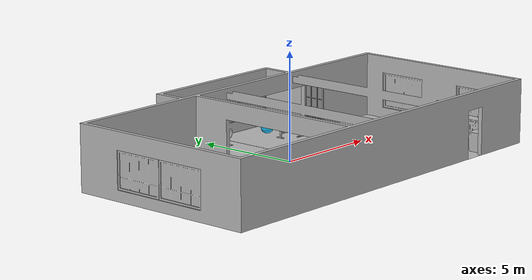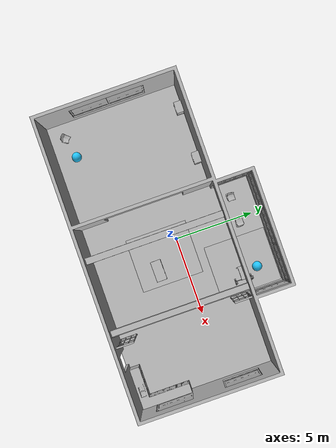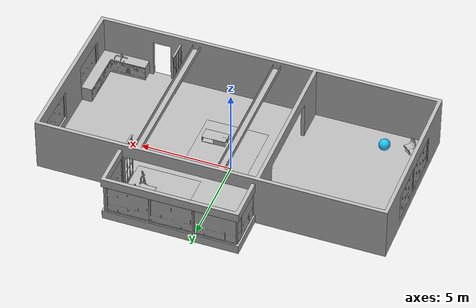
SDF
<sdf version="1.6">
 <world name="visualize_lidar_world">
  <physics name="1ms" type="ignored">
   <max_step_size>0.001</max_step_size>
   <real_time_factor>1.0</real_time_factor>
  </physics>
  <plugin filename="libignition-gazebo-physics-system.so" name="ignition::gazebo::systems::Physics"/>
  <plugin filename="libignition-gazebo-sensors-system.so" name="ignition::gazebo::systems::Sensors">
   <render_engine>ogre2</render_engine>
  </plugin>
  <plugin filename="ignition-gazebo-user-commands-system" name="ignition::gazebo::systems::UserCommands"/>
  <plugin filename="libignition-gazebo-scene-broadcaster-system.so" name="ignition::gazebo::systems::SceneBroadcaster"/>
  <gravity>0 0 -9.8</gravity>
  <scene>
   <ambient>0.4 0.4 0.4 1</ambient>
   <background>0.7 0.7 0.7 1</background>
   <shadows>0</shadows>
   <grid>false</grid>
   <origin_visual>false</origin_visual>
  </scene>
  <model name="Ball_01_001">
   <include><uri>model://aws_robomaker_residential_Ball_01</uri></include>
   <pose>3.295503 4.225674 0.318684 0 -0 0</pose>
  </model>
  <model name="Ball_01_003">
   <include><uri>model://aws_robomaker_residential_Ball_01</uri></include>
   <pose>-6.945503 -4.22174 0.318684 0 -0 0</pose>
  </model>
  <model name="NightStand_01_001">
   <include><uri>model://aws_robomaker_residential_NightStand_01</uri></include>
   <pose>-7.725510 2.860420 0.005258 -0.000002 0 0</pose>
  </model>
  <model name="NightStand_01_002">
   <include><uri>model://aws_robomaker_residential_NightStand_01</uri></include>
   <pose>-4.407341 2.860420 0.005256 0 0.000002 0</pose>
  </model>
  <model name="ChairD_01_001">
   <include><uri>model://aws_robomaker_residential_ChairD_01</uri></include>
   <pose>-1.380775 4.104456 0 0 -0 0</pose>
  </model>
  <model name="ChairD_01_002">
   <include><uri>model://aws_robomaker_residential_ChairD_01</uri></include>
   <pose>0.325214 4.104456 0 0 -0 -3.138741</pose>
  </model>
  <model name="ChairD_01_003">
   <include><uri>model://aws_robomaker_residential_ChairD_01</uri></include>
   <pose>-8.270775 -4.504456 0 0 -0 0.869673</pose>
  </model>
  <model name="Carpet_01_001">
   <include><uri>model://aws_robomaker_residential_Carpet_01</uri></include>
   <pose>0.785050 -1.106647 0.001106 0 -0 0</pose>
  </model>
  <model name="Carpet_01_002">
   <include><uri>model://aws_robomaker_residential_Carpet_01</uri></include>
   <pose>2.854050 3.45 0.000585 0 -0 0</pose>
  </model>
  <model name="CoffeeTable_01_001">
   <include><uri>model://aws_robomaker_residential_CoffeeTable_01</uri></include>
   <pose>1.512301 -1.733438 0.041983 0.000000 0.000000 0.01000</pose>
  </model>
  <model name="FitnessEquipment_01_001">
   <include><uri>model://aws_robomaker_residential_FitnessEquipment_01</uri></include>
   <pose>3.484720 3.169104 0.003168 0 -0 0</pose>
  </model>
  <model name="HouseWallB_01_001">
   <include><uri>model://aws_robomaker_residential_HouseWallB_01</uri></include>
  </model>
  <model name="FloorB_01_001"><include><uri>model://aws_robomaker_residential_FloorB_01</uri></include></model>
  <model name="FoldingDoor_02_001">
   <include><uri>model://aws_robomaker_residential_FoldingDoor_02</uri></include>
   <pose>4.674231 2.46451 0 0 -0 3.14159</pose>
  </model>
  <model name="FoldingDoor_02_002">
   <include><uri>model://aws_robomaker_residential_FoldingDoor_02</uri></include>
   <pose>4.8912 -4.84968 0 0 -0 0</pose>
  </model>
  <model name="KitchenCabinet_01_001">
   <include><uri>model://aws_robomaker_residential_KitchenCabinet_01</uri></include>
   <pose>8.002009 -3.836509 0.012068 0 -0 -3.140001</pose>
  </model>
  <model name="RoomWindow_01_001">
   <include><uri>model://aws_robomaker_residential_RoomWindow_01</uri></include>
   <pose>-9.418600 -0.026285 0.502739 0 -0 0</pose>
  </model>
  <model name="RoomWindow_01_002">
   <include><uri>model://aws_robomaker_residential_RoomWindow_01</uri></include>
   <pose>-9.418600 -2.374090 0.502739 0 -0 0</pose>
  </model>
  <model name="RoomWindow_01_003">
   <include><uri>model://aws_robomaker_residential_RoomWindow_01</uri></include>
   <pose>9.422616 -3.373981 0.502739 0 -0 -3.136099</pose>
  </model>
  <model name="RoomWindow_01_004">
   <include><uri>model://aws_robomaker_residential_RoomWindow_01</uri></include>
   <pose>9.422558 0.968520 0.496581 0 -0 -3.136099</pose>
  </model>
  <model name="RoomWindow_01_005">
   <include><uri>model://aws_robomaker_residential_RoomWindow_01</uri></include>
   <pose>4.722317 4.470281 0.502739 0 -0 -3.136099</pose>
  </model>
  <model name="RoomWindow_01_006">
   <include><uri>model://aws_robomaker_residential_RoomWindow_01</uri></include>
   <pose>3.488520 5.600688 0.502739 0 -0 -1.566274</pose>
  </model>
  <model name="RoomWindow_01_007">
   <include><uri>model://aws_robomaker_residential_RoomWindow_01</uri></include>
   <pose>1.140949 5.600688 0.502739 0 -0 -1.566274</pose>
  </model>
  <model name="RoomWindow_01_008">
   <include><uri>model://aws_robomaker_residential_RoomWindow_01</uri></include>
   <pose>-1.199340 5.600688 0.502739 0 -0 -1.566274</pose>
  </model>
  <model name="RoomWindow_01_009">
   <include><uri>model://aws_robomaker_residential_RoomWindow_01</uri></include>
   <pose>-2.396624 4.387607 0.502739 0 -0 0</pose>
  </model>
  <light name="LivingRoom_CeilingLight_0" type="point">
   <pose>1.194296 4.155759 2.2 0 -0 0</pose>
   <diffuse>0.5 0.5 0.5 1</diffuse>
   <specular>0.1 0.1 0.1 1</specular>
   <attenuation>
    <range>20</range>
    <constant>0.32</constant>
    <linear>0.01</linear>
    <quadratic>0.03</quadratic>
   </attenuation>
   <cast_shadows>0</cast_shadows>
   <direction>0 0 -1</direction>
  </light>
  <light name="LivingRoom_CeilingLight_1" type="point">
   <pose>1.194296 -1.589959 2.2 0 -0 0</pose>
   <diffuse>0.5 0.5 0.5 1</diffuse>
   <specular>0.1 0.1 0.1 1</specular>
   <attenuation>
    <range>20</range>
    <constant>0.05</constant>
    <linear>0.01</linear>
    <quadratic>0.09</quadratic>
   </attenuation>
   <cast_shadows>0</cast_shadows>
   <direction>0 0 -1</direction>
  </light>
  <light name="LivingRoom_WallLight_0" type="point">
   <pose>1.76956 -5.444370 2.2 0 -0 0</pose>
   <diffuse>0.24 0.24 0.24 1</diffuse>
   <specular>0.1 0.1 0.1 1</specular>
   <attenuation>
    <range>20</range>
    <constant>0.12</constant>
    <linear>0.00</linear>
    <quadratic>0.03</quadratic>
   </attenuation>
   <direction>0 0 -1</direction>
  </light>
  <light name="LivingRoom_WallLight_1" type="point">
   <pose>-0.13826 -5.444370 2.2 0 -0 0</pose>
   <diffuse>0.24 0.24 0.24 1</diffuse>
   <specular>0.1 0.1 0.1 1</specular>
   <attenuation>
    <range>20</range>
    <constant>0.12</constant>
    <linear>0.00</linear>
    <quadratic>0.03</quadratic>
   </attenuation>
   <direction>0 0 -1</direction>
  </light>
  <light name="TV_Light_0" type="point">
   <pose>0.8269 -4.939577 1.1 0 -0 0</pose>
   <diffuse>0.31372 0.31372 0.34901 1</diffuse>
   <specular>0.1 0.1 0.1 1</specular>
   <attenuation>
    <range>3</range>
    <constant>0.10</constant>
    <linear>0.04</linear>
    <quadratic>0.50</quadratic>
   </attenuation>
   <direction>0 0 -1</direction>
  </light>
  <light name="BedRoom_Portrait_Light_0" type="spot">
   <pose>-6.190379 -1.829697 1.5587 0.3 -0 0.0</pose>
   <diffuse>0.5 0.5 0.5 1</diffuse>
   <specular>0.1 0.1 0.1 1</specular>
   <attenuation>
    <range>20</range>
    <constant>0.50</constant>
    <linear>0.01</linear>
    <quadratic>0.00</quadratic>
   </attenuation>
   <spot><inner_angle>0.6</inner_angle><outer_angle>1.0</outer_angle><falloff>1.0</falloff></spot>
   <direction>0 0 -1</direction>
  </light>
  <light name="BedRoom_CeilingLight_0" type="point">
   <pose>-6.451061 -0.692040 2.000000 0 -0 0</pose>
   <diffuse>0.5 0.5 0.5 1</diffuse>
   <specular>0.1 0.1 0.1 1</specular>
   <attenuation>
    <range>20</range>
    <constant>0.32</constant>
    <linear>0.01</linear>
    <quadratic>0.03</quadratic>
   </attenuation>
   <cast_shadows>0</cast_shadows>
   <direction>0 0 -1</direction>
  </light>
  <light name="Kitchen_CeilingLight_0" type="point">
   <pose>7.8582 -1.5905 2.280000 0 -0 0</pose>
   <diffuse>0.5 0.5 0.5 1</diffuse>
   <specular>0.1 0.1 0.1 1</specular>
   <attenuation>
    <range>20</range>
    <constant>0.3</constant>
    <linear>0.01</linear>
    <quadratic>0.01</quadratic>
   </attenuation>
   <cast_shadows>0</cast_shadows>
   <direction>0 0 -1</direction>
  </light>
 </world>
</sdf>

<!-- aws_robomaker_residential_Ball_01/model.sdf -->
<sdf version="1.6">
  <model name="aws_robomaker_residential_Ball_01">
    <link name="link">
      <collision name="collision">

        <geometry>

          <sphere>
            <radius>0.31 </radius>
          </sphere>

        </geometry>

        <surface>
          <friction>
            <ode>
              <mu>0.85</mu>
              <mu2>0.85</mu2>
            </ode>
          </friction>

          <contact>
            <ode>
              <kd>8500</kd>
              <max_vel>5.1</max_vel>
            </ode>
          </contact>
        </surface>

      </collision>
      <visual name="visual">
	    <geometry>

          <sphere>
            <radius>0.31 </radius>
          </sphere>
      </geometry>
          <material>
            <diffuse>0.12 0.76 0.97 1</diffuse>
            <ambient>0.03 0.21 0.27 1</ambient>
          </material>

      <meta> <layer> 1 </layer></meta>
</visual>
    </link>
  </model>
</sdf>

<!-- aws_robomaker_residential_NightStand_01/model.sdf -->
<sdf version="1.6">
  <model name="aws_robomaker_residential_NightStand_01">
    <link name="link">
      <collision name="collision">
        <geometry>
          <mesh>
            <uri>file://models/aws_robomaker_residential_NightStand_01/meshes/aws_NightStand_01_collision.DAE</uri>
            <scale>1 1 1</scale>
          </mesh>
        </geometry>
      </collision>
      <visual name="visual">
	    <geometry>
          <mesh>
            <uri>file://models/aws_robomaker_residential_NightStand_01/meshes/aws_NightStand_01_visual.DAE</uri>
          </mesh>
        </geometry>
      <meta> <layer> 1 </layer></meta>
</visual>
    </link>
    <static>1</static>
  </model>
</sdf>

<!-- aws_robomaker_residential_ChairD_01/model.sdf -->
<sdf version="1.6">
  <model name="aws_robomaker_residential_ChairD_01">
    <link name="link">

      <collision name="collision">

        <geometry>
          <mesh>
            <uri>file://models/aws_robomaker_residential_ChairD_01/meshes/aws_ChairD_01_collision.DAE</uri>
            <scale>1 1 1</scale>
          </mesh>
        </geometry>

      </collision>
      <visual name="visual">
	    <geometry>
          <mesh>
            <uri>file://models/aws_robomaker_residential_ChairD_01/meshes/aws_ChairD_01_visual.DAE</uri>
          </mesh>
        </geometry>
      <meta> <layer> 1 </layer></meta>
</visual>
    </link>
  </model>
</sdf>

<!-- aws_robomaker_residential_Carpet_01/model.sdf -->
<sdf version="1.6">
  <model name="aws_robomaker_residential_Carpet_01">
    <link name="link">
      <collision name="collision">

        <geometry>
          <mesh>
            <uri>file://models/aws_robomaker_residential_Carpet_01/meshes/aws_Carpet_01_collision.DAE</uri>

            <scale>1 1 0.95</scale>
          </mesh>
        </geometry>

        <surface>

          <contact>
            <ode>

            </ode>
          </contact>
        </surface>

        <pose>0 0 -0.01 0 0 0 </pose>
      </collision>

      <visual name="visual">
	    <geometry>
          <mesh>
            <uri>file://models/aws_robomaker_residential_Carpet_01/meshes/aws_Carpet_01_visual.DAE</uri>
          </mesh>
        </geometry>
      <meta> <layer> 1 </layer></meta>
</visual>
    </link>

    <static>1</static>

  </model>
</sdf>

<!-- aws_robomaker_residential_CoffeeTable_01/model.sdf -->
<sdf version="1.6">
  <model name="aws_robomaker_residential_CoffeeTable_01">
    <link name="link">
      <collision name="collision">
        <geometry>
          <mesh>
            <uri>file://models/aws_robomaker_residential_CoffeeTable_01/meshes/aws_CoffeeTable_01_collision.DAE</uri>
            <scale>1 1 1</scale>
          </mesh>
        </geometry>

        <surface>
          <contact>
            <ode>
              <max_vel>0.01</max_vel>
            </ode>
          </contact>
         </surface>
      </collision>

      <visual name="visual">
	    <geometry>
          <mesh>
            <uri>file://models/aws_robomaker_residential_CoffeeTable_01/meshes/aws_CoffeeTable_01_visual.DAE</uri>
          </mesh>
        </geometry>
      <meta> <layer> 1 </layer></meta>
</visual>
    </link>
    <static>1</static>
  </model>
</sdf>

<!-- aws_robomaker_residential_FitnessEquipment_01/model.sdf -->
<sdf version="1.6">
  <model name="aws_robomaker_residential_FitnessEquipment_01">
    <link name="link">
      <collision name="collision">
        <geometry>
          <mesh>
            <uri>file://models/aws_robomaker_residential_FitnessEquipment_01/meshes/aws_FitnessEquipment_01_collision.DAE</uri>
            <scale>1 1 1</scale>
          </mesh>
        </geometry>
      </collision>
      <visual name="visual">
	    <geometry>
          <mesh>
            <uri>file://models/aws_robomaker_residential_FitnessEquipment_01/meshes/aws_FitnessEquipment_01_visual.DAE</uri>
          </mesh>
        </geometry>
      <meta> <layer> 1 </layer></meta>
</visual>
    </link>
  <static>1</static>
  </model>
</sdf>

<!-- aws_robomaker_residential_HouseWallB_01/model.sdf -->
<sdf version="1.6">
  <model name="aws_robomaker_residential_HouseWallB_01">
    <link name="link">
      <collision name="collision">
        <geometry>
          <mesh>
            <uri>file://models/aws_robomaker_residential_HouseWallB_01/meshes/aws_HouseWallB_01_collision.DAE</uri>
            <scale>1 1 1</scale>
          </mesh>
        </geometry>
      </collision>
      <visual name="visual">
	    <geometry>
          <mesh>
            <uri>file://models/aws_robomaker_residential_HouseWallB_01/meshes/aws_HouseWallB_01_visual.DAE</uri>
          </mesh>
        </geometry>
      <meta> <layer> 2 </layer></meta>
</visual>
    </link>
<static>1</static>
  </model>
</sdf>

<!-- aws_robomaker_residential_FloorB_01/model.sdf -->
<sdf version="1.6">
  <model name="aws_robomaker_residential_FloorB_01">
    <link name="link">
      <collision name="collision">
        <geometry>
          <mesh>
            <uri>file://models/aws_robomaker_residential_FloorB_01/meshes/aws_FloorB_01_collision.DAE</uri>
            <scale>1 1 0.9</scale>
          </mesh>
        </geometry>

        <surface>

          <friction>
            <ode>
              <mu>0.6</mu>
              <mu2>0.6</mu2>
            </ode>
          </friction>

        </surface>

      </collision>

      <visual name="visual">
	    <geometry>
          <mesh>
            <uri>file://models/aws_robomaker_residential_FloorB_01/meshes/aws_FloorB_01_visual.DAE</uri>
          </mesh>
        </geometry>
      <meta> <layer> 1 </layer></meta>
</visual>
    </link>

	<static>1</static>
  </model>
</sdf>

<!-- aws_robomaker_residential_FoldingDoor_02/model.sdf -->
<sdf version="1.6">
  <model name="aws_robomaker_residential_FoldingDoor_02">
    <link name="link">
      <collision name="collision">
        <geometry>
          <mesh>
            <uri>file://models/aws_robomaker_residential_FoldingDoor_02/meshes/aws_FoldingDoor_02_collision.DAE</uri>
            <scale>1 1 1</scale>
          </mesh>
        </geometry>
      </collision>
      <visual name="visual">
	    <geometry>
          <mesh>
            <uri>file://models/aws_robomaker_residential_FoldingDoor_02/meshes/aws_FoldingDoor_02_visual.DAE</uri>
          </mesh>
        </geometry>
      <meta> <layer> 2 </layer></meta>
</visual>
    </link>
<static>1</static>
  </model>
</sdf>

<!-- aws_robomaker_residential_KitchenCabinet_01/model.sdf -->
<sdf version="1.6">
  <model name="aws_robomaker_residential_KitchenCabinet_01">
    <link name="link">
      <collision name="collision">
        <laser_retro>0</laser_retro>
        <max_contacts>10</max_contacts>

        <geometry>
          <mesh>
            <uri>file://models/aws_robomaker_residential_KitchenCabinet_01/meshes/aws_KitchenCabinet_01_collision.DAE</uri>
            <scale>1 1 1</scale>
          </mesh>
        </geometry>
      </collision>
      <visual name="visual">
	    <geometry>
          <mesh>
            <uri>file://models/aws_robomaker_residential_KitchenCabinet_01/meshes/aws_KitchenCabinet_01_visual.DAE</uri>
          </mesh>
        </geometry>
      <meta> <layer> 1 </layer></meta>
</visual>
    </link>

    <static>1</static>
  </model>
</sdf>

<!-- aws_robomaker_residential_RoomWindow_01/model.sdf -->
<sdf version="1.6">
  <model name="aws_robomaker_residential_RoomWindow_01">
    <link name="link">
      <collision name="collision">
        <geometry>
          <mesh>
            <uri>file://models/aws_robomaker_residential_RoomWindow_01/meshes/aws_RoomWindow_01_collision.DAE</uri>
            <scale>1 1 1</scale>
          </mesh>
        </geometry>
      </collision>
      <visual name="visual">
	    <geometry>
          <mesh>
            <uri>file://models/aws_robomaker_residential_RoomWindow_01/meshes/aws_RoomWindow_01_visual.DAE</uri>
          </mesh>
        </geometry>
      <meta> <layer> 2 </layer></meta>
</visual>
    </link>
	<static>1</static>
  </model>
</sdf>
